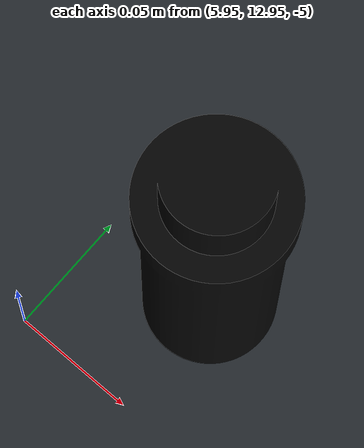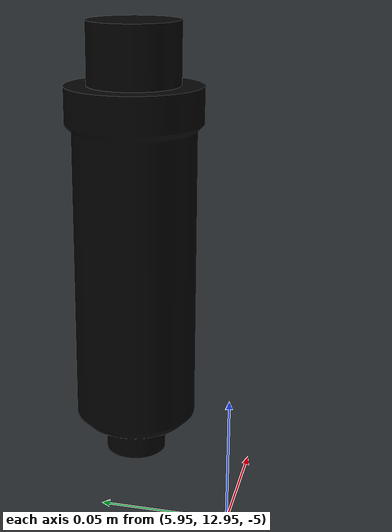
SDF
<?xml version="1.0" ?>
<sdf version="1.9">
    <world name="task_gate">
        <light type="directional" name="sun">
            <cast_shadows>true</cast_shadows>
            <pose>0 0 10 0 0 0</pose>
            <diffuse>0.8 0.8 0.8 1</diffuse>
            <specular>0.2 0.2 0.2 1</specular>
            <attenuation>
                <range>1000</range>
                <constant>0.9</constant>
                <linear>0.01</linear>
                <quadratic>0.001</quadratic>
            </attenuation>
            <direction>-0.5 0.1 -0.9</direction>
        </light>

        <model name="simple_pool">
            <static>true</static>
            <link name="link">
                <visual name="pool_visual">
                    <geometry>
                        <mesh>
                            <uri>../../../assets/common/simple_pool/simple_pool.dae</uri>
                        </mesh>
                    </geometry>
                </visual>
                <collision name="pool_collision">
                    <geometry>
                        <mesh>
                            <uri>../../../assets/common/simple_pool/simple_pool.dae</uri>
                        </mesh>
                    </geometry>
                </collision>
            </link>
        </model>

        <model name="pinger">
            <static>true</static>
            <link name="pinger">
                <pose>6 13 -5 0 0 0</pose>
                <visual name="pinger_visual">
                    <geometry>
                        <mesh>
                            <uri>../../../assets/common/pinger/pinger.dae</uri>
                        </mesh>
                    </geometry>
                </visual>
                <collision name="pinger_collision">
                    <geometry>
                        <mesh>
                            <uri>../../../assets/common/pinger/pinger.dae</uri>
                        </mesh>
                    </geometry>
                </collision>
            </link>
        </model>

    </world>
</sdf>
